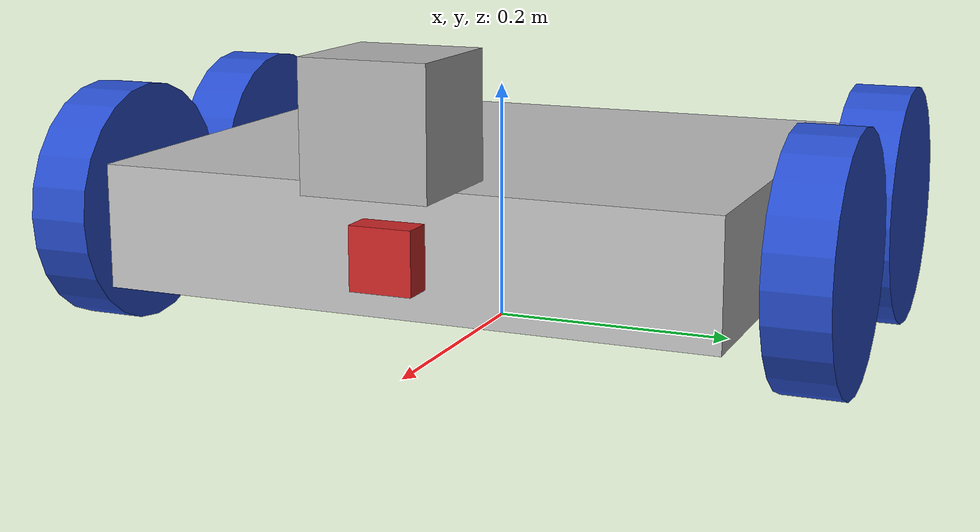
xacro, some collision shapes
<?xml version='1.0'?>

<robot name="my_robot" xmlns:xacro="http://www.ros.org/wiki/xacro">

  <xacro:include filename="$(find office_world)/urdf/my_robot.gazebo" />
  <link name="robot_footprint"></link>

  <joint name="robot_footprint_joint" type="fixed">
    <origin xyz="0 0 0.1" rpy="0 0 0" />
    <parent link="robot_footprint"/>
    <child link="chassis" />
  </joint>

  <link name='chassis'>
    <pose>0 0 0.1 0 0 0</pose>

    <inertial>
      <mass value="15.0"/>
      <origin xyz="0.0 0 0" rpy=" 0 0 0"/>
      <inertia
          ixx="0.1" ixy="0" ixz="0"
          iyy="0.1" iyz="0"
          izz="0.1"
      />
    </inertial>

    <collision name='collision'>
      <origin xyz="0 0 0" rpy=" 0 0 0"/>
      <geometry>
        <box size=".42 .5 .1"/>
      </geometry>
    </collision>

    <visual name='chassis_visual'>
      <origin xyz="0 0 0" rpy=" 0 0 0"/>
      <geometry>
        <box size=".42 .5 .1"/>
      </geometry>
      <material name="chassis_material">
        <color rgba="0.75 0.75 0.75294 1"/>
      </material>
    </visual>

  </link>

   <link name="left_front_wheel">
  <pose>0 0 0 0 0 0</pose>
  <visual>
    <origin xyz="0 0 0" rpy="0 1.5707 1.5707"/>
   <geometry>
    <cylinder radius="0.1" length="0.05"/>
   </geometry>
  </visual>
  <collision>
    <origin xyz="0 0 0" rpy="0 1.5707 1.5707"/>
   <geometry>
    <cylinder radius="0.1" length="0.05"/>
   </geometry>
  </collision>
  <inertial>
      <mass value="5.0"/>
      <origin xyz="0.0 0 0" rpy=" 0 0 0"/>
      <inertia
          ixx="0.1" ixy="0" ixz="0"
          iyy="0.1" iyz="0"
          izz="0.1"
      />
    </inertial>
  </link>

   <link name="left_back_wheel">
  <pose>0 0 0 0 0 0</pose>
  <visual>
    <origin xyz="0 0 0" rpy="0 1.5707 1.5707"/>
   <geometry>
    <cylinder radius="0.1" length="0.05"/>
   </geometry>
  </visual>
  <collision>
    <origin xyz="0 0 0" rpy="0 1.5707 1.5707"/>
   <geometry>
    <cylinder radius="0.1" length="0.05"/>
   </geometry>
  </collision>
  <inertial>
      <mass value="5.0"/>
      <origin xyz="0.0 0 0" rpy=" 0 0 0"/>
      <inertia
          ixx="0.1" ixy="0" ixz="0"
          iyy="0.1" iyz="0"
          izz="0.1"
      />
    </inertial>
  </link>

<link name="right_front_wheel">
  <pose>0 0 0 0 0 0</pose>
  <visual>
    <origin xyz="0 0 0" rpy="0 1.5707 1.5707"/>
   <geometry>
    <cylinder radius="0.1" length="0.05"/>
   </geometry>
  </visual>
  <collision>
    <origin xyz="0 0 0" rpy="0 1.5707 1.5707"/>
   <geometry>
    <cylinder radius="0.1" length="0.05"/>
   </geometry>
  </collision>
  <inertial>
      <mass value="5.0"/>
      <origin xyz="0.0 0 0" rpy=" 0 0 0"/>
      <inertia
          ixx="0.1" ixy="0" ixz="0"
          iyy="0.1" iyz="0"
          izz="0.1"
      />
    </inertial>
  </link>

<link name="right_back_wheel">
  <pose>0 0 0 0 0 0</pose>
  <visual>
    <origin xyz="0 0 0" rpy="0 1.5707 1.5707"/>
   <geometry>
    <cylinder radius="0.1" length="0.05"/>
   </geometry>
  </visual>
  <collision>
    <origin xyz="0 0 0" rpy="0 1.5707 1.5707"/>
   <geometry>
    <cylinder radius="0.1" length="0.05"/>
   </geometry>
  </collision>
  <inertial>
      <mass value="5.0"/>
      <origin xyz="0.0 0 0" rpy=" 0 0 0"/>
      <inertia
          ixx="0.1" ixy="0" ixz="0"
          iyy="0.1" iyz="0"
          izz="0.1"
      />
    </inertial>
  </link>

  <joint type="continuous" name="left_front_wheel_hinge">
    <origin xyz="0.11 0.3 0" rpy="0 0 0"/>
    <child link="left_front_wheel"/>
    <parent link="chassis"/>
    <axis xyz="0 1 0" rpy="0 0 0"/>
    <limit effort="10000" velocity="1000"/>
    <dynamics damping="1.0" friction="1.0"/>
  </joint>

  <joint type="continuous" name="left_back_wheel_hinge">
    <origin xyz="-0.11 0.3 0" rpy="0 0 0"/>
    <child link="left_back_wheel"/>
    <parent link="chassis"/>
    <axis xyz="0 1 0" rpy="0 0 0"/>
    <limit effort="10000" velocity="1000"/>
    <dynamics damping="1.0" friction="1.0"/>
  </joint>

  <joint type="continuous" name="right_front_wheel_hinge">
    <origin xyz="0.11 -0.3 0" rpy="0 0 0"/>
    <child link="right_front_wheel"/>
    <parent link="chassis"/>
    <axis xyz="0 1 0" rpy="0 0 0"/>
    <limit effort="10000" velocity="1000"/>
    <dynamics damping="1.0" friction="1.0"/>
  </joint>

   <joint type="continuous" name="right_back_wheel_hinge">
    <origin xyz="-0.11 -0.3 0" rpy="0 0 0"/>
    <child link="right_back_wheel"/>
    <parent link="chassis"/>
    <axis xyz="0 1 0" rpy="0 0 0"/>
    <limit effort="10000" velocity="1000"/>
    <dynamics damping="1.0" friction="1.0"/>
  </joint>

<link name="camera_link">
  <origin xyz="0 0 0" rpy="0 0 0"/>
  <visual>
    <geometry>
      <box size="0.05 0.05 0.05"/>
    </geometry>
  </visual>
  <collision>
    <geometry>
     <box size="0.05 0.05 0.05"/>
   </geometry>
  </collision>
  <inertial>
    <origin xyz="0.05 0.05 0.05" rpy="0 0 0"/>
    <mass value="0.1"/>
    <inertia ixx="1e-6" ixy="0" ixz="0" iyy="1e-6" iyz="0" izz="1e-6"/>
  </inertial>
</link>

<joint name="camera_joint" type="fixed">
  <origin xyz="0.21 0 0" rpy="0 0 0"/>
  <parent link="chassis"/>
  <child link="camera_link"/>
  <axis xyz="0 1 0"/>
</joint>

<link name="hokuyo">
  <origin xyz="0 0 0" rpy="0 0 0"/>
  <visual>
    <geometry>
     <mesh filename="package://my_robot/meshes/hokuyo.dae"/>
   </geometry>
  </visual>
  <collision>
    <geometry>
     <box size="0.1 0.1 0.1"/>
   </geometry>
  </collision>
  <inertial>
    <mass value="1e-5"/>
    <inertia ixx="1e-6" ixy="0" ixz="0" iyy="1e-6" iyz="0" izz="1e-6"/>
  </inertial>
</link>

<joint name="hokuyo_joint" type="fixed">
  <origin xyz="0.21 0 0.1" rpy="0 0 0"/>
  <parent link="chassis"/>
  <child link="hokuyo"/>
  <axis xyz="0 1 0"/>
</joint>

<gazebo reference="left_front_wheel">
    <material>Gazebo/Blue</material>
</gazebo>

<gazebo reference="left_back_wheel">
    <material>Gazebo/Blue</material>
</gazebo>

<gazebo reference="right_front_wheel">
    <material>Gazebo/Blue</material>
</gazebo>

<gazebo reference="right_back_wheel">
    <material>Gazebo/Blue</material>
</gazebo>

<gazebo reference="chassis">
    <material>Gazebo/Green</material>
</gazebo>

<gazebo reference="camera_link">
    <material>Gazebo/Red</material>
</gazebo>

<joint name="camera_optical_joint" type="fixed">
    <origin xyz="0 0 0" rpy="-1.5707 0 -1.5707"/>
    <parent link="camera_link"/>
    <child link="camera_link_optical"/>
</joint>

<link name="camera_link_optical">
</link>

</robot>
